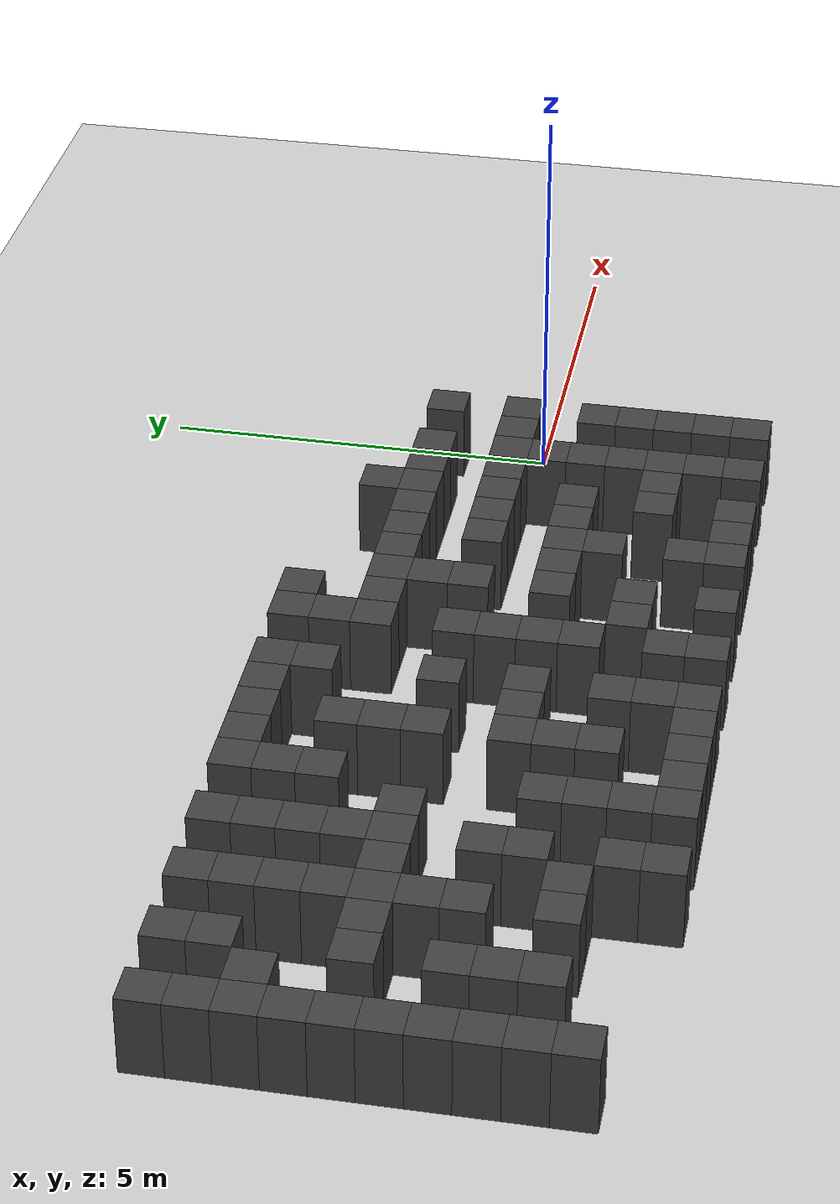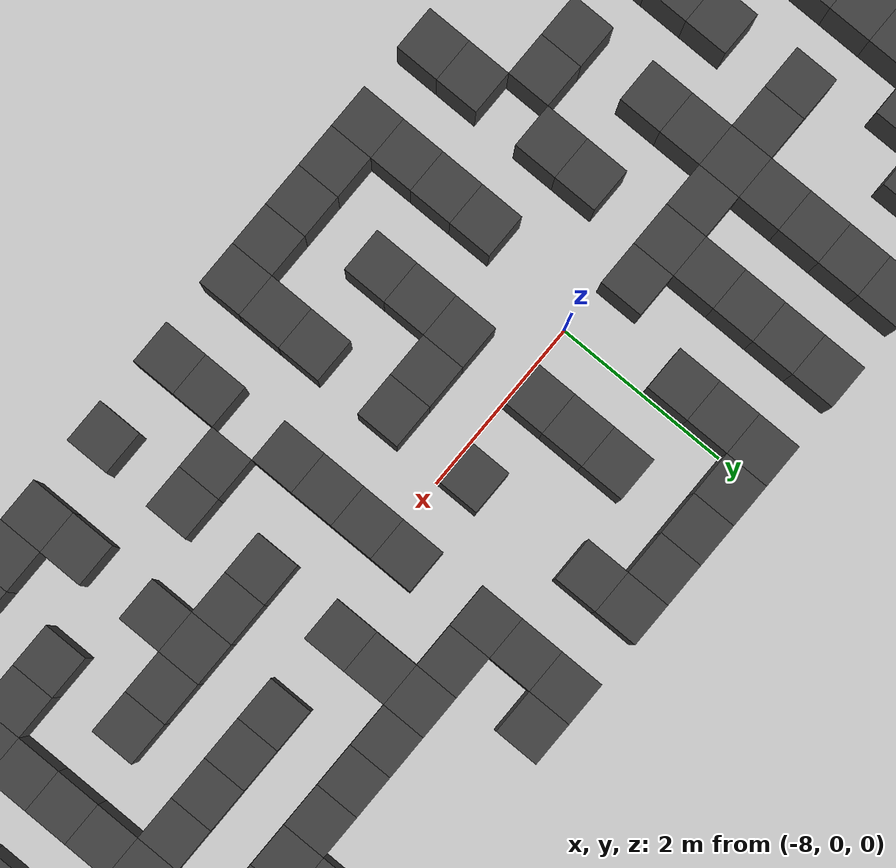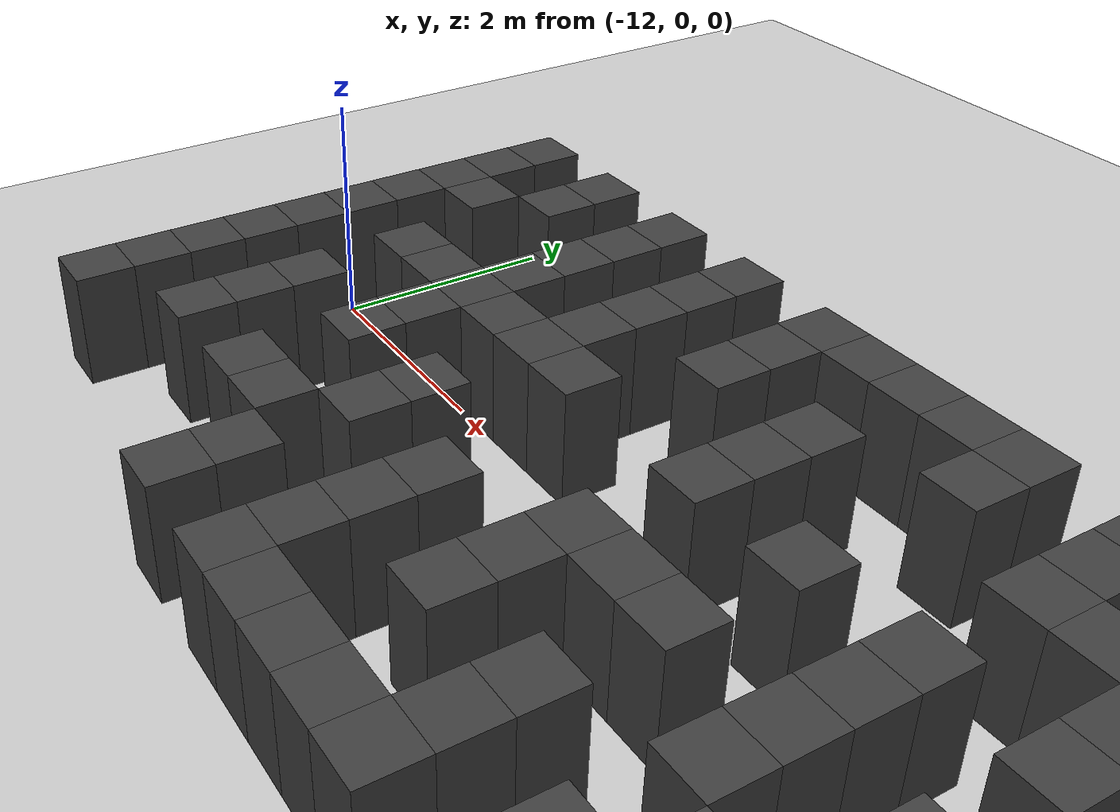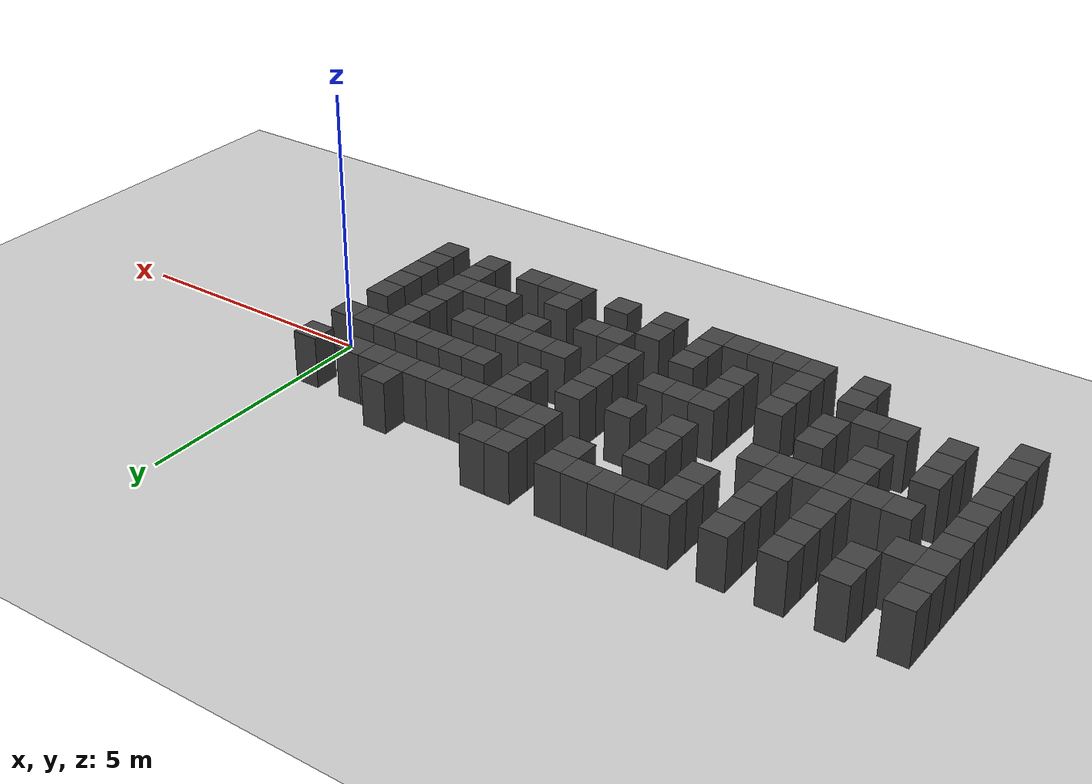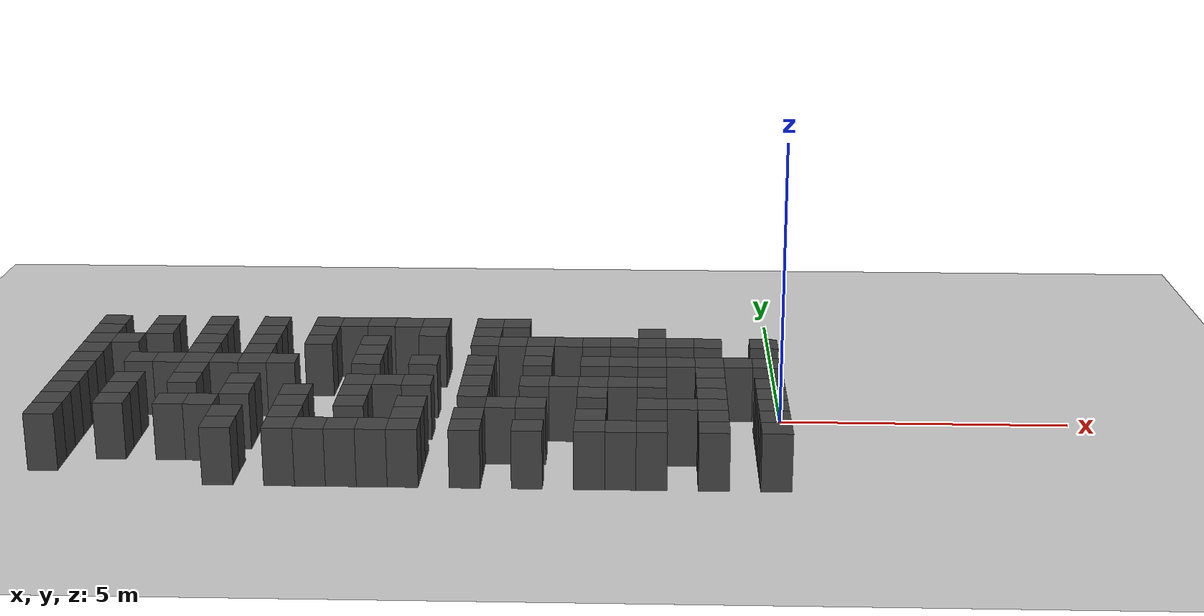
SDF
<sdf version="1.7">
 <world name="map_15168">
  <model name="ground_plane">
   <static>true</static>
   <link name="link">
    <collision name="collision">
     <geometry><plane><normal>0 0 1</normal><size>200 200</size></plane></geometry>
    </collision>
    <visual name="visual">
     <geometry><plane><normal>0 0 1</normal><size>200 200</size></plane></geometry>
     <material><ambient>0.8 0.8 0.8 1</ambient><diffuse>0.8 0.8 0.8 1</diffuse></material>
    </visual>
   </link>
  </model>
  <model name="maze_environment">
   <static>true</static>
   <link name="wall_473">
    <pose>-12.250 2.250 0.500 0 0 0</pose>
    <collision name="col"><geometry><box><size>0.5 0.5 1.0</size></box></geometry></collision>
    <visual name="vis">
     <geometry><box><size>0.5 0.5 1.0</size></box></geometry>
     <material><ambient>0.15 0.15 0.15 1</ambient><diffuse>0.25 0.25 0.25 1</diffuse></material>
    </visual>
   </link>
   <link name="wall_474">
    <pose>-11.250 2.250 0.500 0 0 0</pose>
    <collision name="col"><geometry><box><size>0.5 0.5 1.0</size></box></geometry></collision>
    <visual name="vis">
     <geometry><box><size>0.5 0.5 1.0</size></box></geometry>
     <material><ambient>0.15 0.15 0.15 1</ambient><diffuse>0.25 0.25 0.25 1</diffuse></material>
    </visual>
   </link>
   <link name="wall_475">
    <pose>-10.250 2.250 0.500 0 0 0</pose>
    <collision name="col"><geometry><box><size>0.5 0.5 1.0</size></box></geometry></collision>
    <visual name="vis">
     <geometry><box><size>0.5 0.5 1.0</size></box></geometry>
     <material><ambient>0.15 0.15 0.15 1</ambient><diffuse>0.25 0.25 0.25 1</diffuse></material>
    </visual>
   </link>
   <link name="wall_476">
    <pose>-9.250 2.250 0.500 0 0 0</pose>
    <collision name="col"><geometry><box><size>0.5 0.5 1.0</size></box></geometry></collision>
    <visual name="vis">
     <geometry><box><size>0.5 0.5 1.0</size></box></geometry>
     <material><ambient>0.15 0.15 0.15 1</ambient><diffuse>0.25 0.25 0.25 1</diffuse></material>
    </visual>
   </link>
   <link name="wall_477">
    <pose>-8.250 2.250 0.500 0 0 0</pose>
    <collision name="col"><geometry><box><size>0.5 0.5 1.0</size></box></geometry></collision>
    <visual name="vis">
     <geometry><box><size>0.5 0.5 1.0</size></box></geometry>
     <material><ambient>0.15 0.15 0.15 1</ambient><diffuse>0.25 0.25 0.25 1</diffuse></material>
    </visual>
   </link>
   <link name="wall_478">
    <pose>-7.750 2.250 0.500 0 0 0</pose>
    <collision name="col"><geometry><box><size>0.5 0.5 1.0</size></box></geometry></collision>
    <visual name="vis">
     <geometry><box><size>0.5 0.5 1.0</size></box></geometry>
     <material><ambient>0.15 0.15 0.15 1</ambient><diffuse>0.25 0.25 0.25 1</diffuse></material>
    </visual>
   </link>
   <link name="wall_479">
    <pose>-7.250 2.250 0.500 0 0 0</pose>
    <collision name="col"><geometry><box><size>0.5 0.5 1.0</size></box></geometry></collision>
    <visual name="vis">
     <geometry><box><size>0.5 0.5 1.0</size></box></geometry>
     <material><ambient>0.15 0.15 0.15 1</ambient><diffuse>0.25 0.25 0.25 1</diffuse></material>
    </visual>
   </link>
   <link name="wall_480">
    <pose>-6.750 2.250 0.500 0 0 0</pose>
    <collision name="col"><geometry><box><size>0.5 0.5 1.0</size></box></geometry></collision>
    <visual name="vis">
     <geometry><box><size>0.5 0.5 1.0</size></box></geometry>
     <material><ambient>0.15 0.15 0.15 1</ambient><diffuse>0.25 0.25 0.25 1</diffuse></material>
    </visual>
   </link>
   <link name="wall_481">
    <pose>-6.250 2.250 0.500 0 0 0</pose>
    <collision name="col"><geometry><box><size>0.5 0.5 1.0</size></box></geometry></collision>
    <visual name="vis">
     <geometry><box><size>0.5 0.5 1.0</size></box></geometry>
     <material><ambient>0.15 0.15 0.15 1</ambient><diffuse>0.25 0.25 0.25 1</diffuse></material>
    </visual>
   </link>
   <link name="wall_482">
    <pose>-5.250 2.250 0.500 0 0 0</pose>
    <collision name="col"><geometry><box><size>0.5 0.5 1.0</size></box></geometry></collision>
    <visual name="vis">
     <geometry><box><size>0.5 0.5 1.0</size></box></geometry>
     <material><ambient>0.15 0.15 0.15 1</ambient><diffuse>0.25 0.25 0.25 1</diffuse></material>
    </visual>
   </link>
   <link name="wall_483">
    <pose>-4.750 2.250 0.500 0 0 0</pose>
    <collision name="col"><geometry><box><size>0.5 0.5 1.0</size></box></geometry></collision>
    <visual name="vis">
     <geometry><box><size>0.5 0.5 1.0</size></box></geometry>
     <material><ambient>0.15 0.15 0.15 1</ambient><diffuse>0.25 0.25 0.25 1</diffuse></material>
    </visual>
   </link>
   <link name="wall_506">
    <pose>-12.250 1.750 0.500 0 0 0</pose>
    <collision name="col"><geometry><box><size>0.5 0.5 1.0</size></box></geometry></collision>
    <visual name="vis">
     <geometry><box><size>0.5 0.5 1.0</size></box></geometry>
     <material><ambient>0.15 0.15 0.15 1</ambient><diffuse>0.25 0.25 0.25 1</diffuse></material>
    </visual>
   </link>
   <link name="wall_507">
    <pose>-11.250 1.750 0.500 0 0 0</pose>
    <collision name="col"><geometry><box><size>0.5 0.5 1.0</size></box></geometry></collision>
    <visual name="vis">
     <geometry><box><size>0.5 0.5 1.0</size></box></geometry>
     <material><ambient>0.15 0.15 0.15 1</ambient><diffuse>0.25 0.25 0.25 1</diffuse></material>
    </visual>
   </link>
   <link name="wall_508">
    <pose>-10.250 1.750 0.500 0 0 0</pose>
    <collision name="col"><geometry><box><size>0.5 0.5 1.0</size></box></geometry></collision>
    <visual name="vis">
     <geometry><box><size>0.5 0.5 1.0</size></box></geometry>
     <material><ambient>0.15 0.15 0.15 1</ambient><diffuse>0.25 0.25 0.25 1</diffuse></material>
    </visual>
   </link>
   <link name="wall_509">
    <pose>-9.250 1.750 0.500 0 0 0</pose>
    <collision name="col"><geometry><box><size>0.5 0.5 1.0</size></box></geometry></collision>
    <visual name="vis">
     <geometry><box><size>0.5 0.5 1.0</size></box></geometry>
     <material><ambient>0.15 0.15 0.15 1</ambient><diffuse>0.25 0.25 0.25 1</diffuse></material>
    </visual>
   </link>
   <link name="wall_510">
    <pose>-8.250 1.750 0.500 0 0 0</pose>
    <collision name="col"><geometry><box><size>0.5 0.5 1.0</size></box></geometry></collision>
    <visual name="vis">
     <geometry><box><size>0.5 0.5 1.0</size></box></geometry>
     <material><ambient>0.15 0.15 0.15 1</ambient><diffuse>0.25 0.25 0.25 1</diffuse></material>
    </visual>
   </link>
   <link name="wall_511">
    <pose>-6.250 1.750 0.500 0 0 0</pose>
    <collision name="col"><geometry><box><size>0.5 0.5 1.0</size></box></geometry></collision>
    <visual name="vis">
     <geometry><box><size>0.5 0.5 1.0</size></box></geometry>
     <material><ambient>0.15 0.15 0.15 1</ambient><diffuse>0.25 0.25 0.25 1</diffuse></material>
    </visual>
   </link>
   <link name="wall_512">
    <pose>-5.250 1.750 0.500 0 0 0</pose>
    <collision name="col"><geometry><box><size>0.5 0.5 1.0</size></box></geometry></collision>
    <visual name="vis">
     <geometry><box><size>0.5 0.5 1.0</size></box></geometry>
     <material><ambient>0.15 0.15 0.15 1</ambient><diffuse>0.25 0.25 0.25 1</diffuse></material>
    </visual>
   </link>
   <link name="wall_513">
    <pose>-2.250 1.750 0.500 0 0 0</pose>
    <collision name="col"><geometry><box><size>0.5 0.5 1.0</size></box></geometry></collision>
    <visual name="vis">
     <geometry><box><size>0.5 0.5 1.0</size></box></geometry>
     <material><ambient>0.15 0.15 0.15 1</ambient><diffuse>0.25 0.25 0.25 1</diffuse></material>
    </visual>
   </link>
   <link name="wall_521">
    <pose>-12.250 1.250 0.500 0 0 0</pose>
    <collision name="col"><geometry><box><size>0.5 0.5 1.0</size></box></geometry></collision>
    <visual name="vis">
     <geometry><box><size>0.5 0.5 1.0</size></box></geometry>
     <material><ambient>0.15 0.15 0.15 1</ambient><diffuse>0.25 0.25 0.25 1</diffuse></material>
    </visual>
   </link>
   <link name="wall_522">
    <pose>-11.750 1.250 0.500 0 0 0</pose>
    <collision name="col"><geometry><box><size>0.5 0.5 1.0</size></box></geometry></collision>
    <visual name="vis">
     <geometry><box><size>0.5 0.5 1.0</size></box></geometry>
     <material><ambient>0.15 0.15 0.15 1</ambient><diffuse>0.25 0.25 0.25 1</diffuse></material>
    </visual>
   </link>
   <link name="wall_523">
    <pose>-10.250 1.250 0.500 0 0 0</pose>
    <collision name="col"><geometry><box><size>0.5 0.5 1.0</size></box></geometry></collision>
    <visual name="vis">
     <geometry><box><size>0.5 0.5 1.0</size></box></geometry>
     <material><ambient>0.15 0.15 0.15 1</ambient><diffuse>0.25 0.25 0.25 1</diffuse></material>
    </visual>
   </link>
   <link name="wall_524">
    <pose>-9.250 1.250 0.500 0 0 0</pose>
    <collision name="col"><geometry><box><size>0.5 0.5 1.0</size></box></geometry></collision>
    <visual name="vis">
     <geometry><box><size>0.5 0.5 1.0</size></box></geometry>
     <material><ambient>0.15 0.15 0.15 1</ambient><diffuse>0.25 0.25 0.25 1</diffuse></material>
    </visual>
   </link>
   <link name="wall_525">
    <pose>-8.250 1.250 0.500 0 0 0</pose>
    <collision name="col"><geometry><box><size>0.5 0.5 1.0</size></box></geometry></collision>
    <visual name="vis">
     <geometry><box><size>0.5 0.5 1.0</size></box></geometry>
     <material><ambient>0.15 0.15 0.15 1</ambient><diffuse>0.25 0.25 0.25 1</diffuse></material>
    </visual>
   </link>
   <link name="wall_526">
    <pose>-7.250 1.250 0.500 0 0 0</pose>
    <collision name="col"><geometry><box><size>0.5 0.5 1.0</size></box></geometry></collision>
    <visual name="vis">
     <geometry><box><size>0.5 0.5 1.0</size></box></geometry>
     <material><ambient>0.15 0.15 0.15 1</ambient><diffuse>0.25 0.25 0.25 1</diffuse></material>
    </visual>
   </link>
   <link name="wall_527">
    <pose>-5.250 1.250 0.500 0 0 0</pose>
    <collision name="col"><geometry><box><size>0.5 0.5 1.0</size></box></geometry></collision>
    <visual name="vis">
     <geometry><box><size>0.5 0.5 1.0</size></box></geometry>
     <material><ambient>0.15 0.15 0.15 1</ambient><diffuse>0.25 0.25 0.25 1</diffuse></material>
    </visual>
   </link>
   <link name="wall_528">
    <pose>-4.750 1.250 0.500 0 0 0</pose>
    <collision name="col"><geometry><box><size>0.5 0.5 1.0</size></box></geometry></collision>
    <visual name="vis">
     <geometry><box><size>0.5 0.5 1.0</size></box></geometry>
     <material><ambient>0.15 0.15 0.15 1</ambient><diffuse>0.25 0.25 0.25 1</diffuse></material>
    </visual>
   </link>
   <link name="wall_529">
    <pose>-4.250 1.250 0.500 0 0 0</pose>
    <collision name="col"><geometry><box><size>0.5 0.5 1.0</size></box></geometry></collision>
    <visual name="vis">
     <geometry><box><size>0.5 0.5 1.0</size></box></geometry>
     <material><ambient>0.15 0.15 0.15 1</ambient><diffuse>0.25 0.25 0.25 1</diffuse></material>
    </visual>
   </link>
   <link name="wall_530">
    <pose>-3.750 1.250 0.500 0 0 0</pose>
    <collision name="col"><geometry><box><size>0.5 0.5 1.0</size></box></geometry></collision>
    <visual name="vis">
     <geometry><box><size>0.5 0.5 1.0</size></box></geometry>
     <material><ambient>0.15 0.15 0.15 1</ambient><diffuse>0.25 0.25 0.25 1</diffuse></material>
    </visual>
   </link>
   <link name="wall_531">
    <pose>-3.250 1.250 0.500 0 0 0</pose>
    <collision name="col"><geometry><box><size>0.5 0.5 1.0</size></box></geometry></collision>
    <visual name="vis">
     <geometry><box><size>0.5 0.5 1.0</size></box></geometry>
     <material><ambient>0.15 0.15 0.15 1</ambient><diffuse>0.25 0.25 0.25 1</diffuse></material>
    </visual>
   </link>
   <link name="wall_532">
    <pose>-2.750 1.250 0.500 0 0 0</pose>
    <collision name="col"><geometry><box><size>0.5 0.5 1.0</size></box></geometry></collision>
    <visual name="vis">
     <geometry><box><size>0.5 0.5 1.0</size></box></geometry>
     <material><ambient>0.15 0.15 0.15 1</ambient><diffuse>0.25 0.25 0.25 1</diffuse></material>
    </visual>
   </link>
   <link name="wall_533">
    <pose>-2.250 1.250 0.500 0 0 0</pose>
    <collision name="col"><geometry><box><size>0.5 0.5 1.0</size></box></geometry></collision>
    <visual name="vis">
     <geometry><box><size>0.5 0.5 1.0</size></box></geometry>
     <material><ambient>0.15 0.15 0.15 1</ambient><diffuse>0.25 0.25 0.25 1</diffuse></material>
    </visual>
   </link>
   <link name="wall_534">
    <pose>-1.750 1.250 0.500 0 0 0</pose>
    <collision name="col"><geometry><box><size>0.5 0.5 1.0</size></box></geometry></collision>
    <visual name="vis">
     <geometry><box><size>0.5 0.5 1.0</size></box></geometry>
     <material><ambient>0.15 0.15 0.15 1</ambient><diffuse>0.25 0.25 0.25 1</diffuse></material>
    </visual>
   </link>
   <link name="wall_535">
    <pose>-1.250 1.250 0.500 0 0 0</pose>
    <collision name="col"><geometry><box><size>0.5 0.5 1.0</size></box></geometry></collision>
    <visual name="vis">
     <geometry><box><size>0.5 0.5 1.0</size></box></geometry>
     <material><ambient>0.15 0.15 0.15 1</ambient><diffuse>0.25 0.25 0.25 1</diffuse></material>
    </visual>
   </link>
   <link name="wall_536">
    <pose>-0.250 1.250 0.500 0 0 0</pose>
    <collision name="col"><geometry><box><size>0.5 0.5 1.0</size></box></geometry></collision>
    <visual name="vis">
     <geometry><box><size>0.5 0.5 1.0</size></box></geometry>
     <material><ambient>0.15 0.15 0.15 1</ambient><diffuse>0.25 0.25 0.25 1</diffuse></material>
    </visual>
   </link>
   <link name="wall_552">
    <pose>-12.250 0.750 0.500 0 0 0</pose>
    <collision name="col"><geometry><box><size>0.5 0.5 1.0</size></box></geometry></collision>
    <visual name="vis">
     <geometry><box><size>0.5 0.5 1.0</size></box></geometry>
     <material><ambient>0.15 0.15 0.15 1</ambient><diffuse>0.25 0.25 0.25 1</diffuse></material>
    </visual>
   </link>
   <link name="wall_553">
    <pose>-10.250 0.750 0.500 0 0 0</pose>
    <collision name="col"><geometry><box><size>0.5 0.5 1.0</size></box></geometry></collision>
    <visual name="vis">
     <geometry><box><size>0.5 0.5 1.0</size></box></geometry>
     <material><ambient>0.15 0.15 0.15 1</ambient><diffuse>0.25 0.25 0.25 1</diffuse></material>
    </visual>
   </link>
   <link name="wall_554">
    <pose>-9.250 0.750 0.500 0 0 0</pose>
    <collision name="col"><geometry><box><size>0.5 0.5 1.0</size></box></geometry></collision>
    <visual name="vis">
     <geometry><box><size>0.5 0.5 1.0</size></box></geometry>
     <material><ambient>0.15 0.15 0.15 1</ambient><diffuse>0.25 0.25 0.25 1</diffuse></material>
    </visual>
   </link>
   <link name="wall_555">
    <pose>-7.250 0.750 0.500 0 0 0</pose>
    <collision name="col"><geometry><box><size>0.5 0.5 1.0</size></box></geometry></collision>
    <visual name="vis">
     <geometry><box><size>0.5 0.5 1.0</size></box></geometry>
     <material><ambient>0.15 0.15 0.15 1</ambient><diffuse>0.25 0.25 0.25 1</diffuse></material>
    </visual>
   </link>
   <link name="wall_556">
    <pose>-4.250 0.750 0.500 0 0 0</pose>
    <collision name="col"><geometry><box><size>0.5 0.5 1.0</size></box></geometry></collision>
    <visual name="vis">
     <geometry><box><size>0.5 0.5 1.0</size></box></geometry>
     <material><ambient>0.15 0.15 0.15 1</ambient><diffuse>0.25 0.25 0.25 1</diffuse></material>
    </visual>
   </link>
   <link name="wall_565">
    <pose>-12.250 0.250 0.500 0 0 0</pose>
    <collision name="col"><geometry><box><size>0.5 0.5 1.0</size></box></geometry></collision>
    <visual name="vis">
     <geometry><box><size>0.5 0.5 1.0</size></box></geometry>
     <material><ambient>0.15 0.15 0.15 1</ambient><diffuse>0.25 0.25 0.25 1</diffuse></material>
    </visual>
   </link>
   <link name="wall_566">
    <pose>-11.250 0.250 0.500 0 0 0</pose>
    <collision name="col"><geometry><box><size>0.5 0.5 1.0</size></box></geometry></collision>
    <visual name="vis">
     <geometry><box><size>0.5 0.5 1.0</size></box></geometry>
     <material><ambient>0.15 0.15 0.15 1</ambient><diffuse>0.25 0.25 0.25 1</diffuse></material>
    </visual>
   </link>
   <link name="wall_567">
    <pose>-10.750 0.250 0.500 0 0 0</pose>
    <collision name="col"><geometry><box><size>0.5 0.5 1.0</size></box></geometry></collision>
    <visual name="vis">
     <geometry><box><size>0.5 0.5 1.0</size></box></geometry>
     <material><ambient>0.15 0.15 0.15 1</ambient><diffuse>0.25 0.25 0.25 1</diffuse></material>
    </visual>
   </link>
   <link name="wall_568">
    <pose>-10.250 0.250 0.500 0 0 0</pose>
    <collision name="col"><geometry><box><size>0.5 0.5 1.0</size></box></geometry></collision>
    <visual name="vis">
     <geometry><box><size>0.5 0.5 1.0</size></box></geometry>
     <material><ambient>0.15 0.15 0.15 1</ambient><diffuse>0.25 0.25 0.25 1</diffuse></material>
    </visual>
   </link>
   <link name="wall_569">
    <pose>-9.750 0.250 0.500 0 0 0</pose>
    <collision name="col"><geometry><box><size>0.5 0.5 1.0</size></box></geometry></collision>
    <visual name="vis">
     <geometry><box><size>0.5 0.5 1.0</size></box></geometry>
     <material><ambient>0.15 0.15 0.15 1</ambient><diffuse>0.25 0.25 0.25 1</diffuse></material>
    </visual>
   </link>
   <link name="wall_570">
    <pose>-9.250 0.250 0.500 0 0 0</pose>
    <collision name="col"><geometry><box><size>0.5 0.5 1.0</size></box></geometry></collision>
    <visual name="vis">
     <geometry><box><size>0.5 0.5 1.0</size></box></geometry>
     <material><ambient>0.15 0.15 0.15 1</ambient><diffuse>0.25 0.25 0.25 1</diffuse></material>
    </visual>
   </link>
   <link name="wall_571">
    <pose>-8.750 0.250 0.500 0 0 0</pose>
    <collision name="col"><geometry><box><size>0.5 0.5 1.0</size></box></geometry></collision>
    <visual name="vis">
     <geometry><box><size>0.5 0.5 1.0</size></box></geometry>
     <material><ambient>0.15 0.15 0.15 1</ambient><diffuse>0.25 0.25 0.25 1</diffuse></material>
    </visual>
   </link>
   <link name="wall_572">
    <pose>-7.250 0.250 0.500 0 0 0</pose>
    <collision name="col"><geometry><box><size>0.5 0.5 1.0</size></box></geometry></collision>
    <visual name="vis">
     <geometry><box><size>0.5 0.5 1.0</size></box></geometry>
     <material><ambient>0.15 0.15 0.15 1</ambient><diffuse>0.25 0.25 0.25 1</diffuse></material>
    </visual>
   </link>
   <link name="wall_573">
    <pose>-6.250 0.250 0.500 0 0 0</pose>
    <collision name="col"><geometry><box><size>0.5 0.5 1.0</size></box></geometry></collision>
    <visual name="vis">
     <geometry><box><size>0.5 0.5 1.0</size></box></geometry>
     <material><ambient>0.15 0.15 0.15 1</ambient><diffuse>0.25 0.25 0.25 1</diffuse></material>
    </visual>
   </link>
   <link name="wall_574">
    <pose>-5.250 0.250 0.500 0 0 0</pose>
    <collision name="col"><geometry><box><size>0.5 0.5 1.0</size></box></geometry></collision>
    <visual name="vis">
     <geometry><box><size>0.5 0.5 1.0</size></box></geometry>
     <material><ambient>0.15 0.15 0.15 1</ambient><diffuse>0.25 0.25 0.25 1</diffuse></material>
    </visual>
   </link>
   <link name="wall_575">
    <pose>-4.250 0.250 0.500 0 0 0</pose>
    <collision name="col"><geometry><box><size>0.5 0.5 1.0</size></box></geometry></collision>
    <visual name="vis">
     <geometry><box><size>0.5 0.5 1.0</size></box></geometry>
     <material><ambient>0.15 0.15 0.15 1</ambient><diffuse>0.25 0.25 0.25 1</diffuse></material>
    </visual>
   </link>
   <link name="wall_576">
    <pose>-3.250 0.250 0.500 0 0 0</pose>
    <collision name="col"><geometry><box><size>0.5 0.5 1.0</size></box></geometry></collision>
    <visual name="vis">
     <geometry><box><size>0.5 0.5 1.0</size></box></geometry>
     <material><ambient>0.15 0.15 0.15 1</ambient><diffuse>0.25 0.25 0.25 1</diffuse></material>
    </visual>
   </link>
   <link name="wall_577">
    <pose>-2.750 0.250 0.500 0 0 0</pose>
    <collision name="col"><geometry><box><size>0.5 0.5 1.0</size></box></geometry></collision>
    <visual name="vis">
     <geometry><box><size>0.5 0.5 1.0</size></box></geometry>
     <material><ambient>0.15 0.15 0.15 1</ambient><diffuse>0.25 0.25 0.25 1</diffuse></material>
    </visual>
   </link>
   <link name="wall_578">
    <pose>-2.250 0.250 0.500 0 0 0</pose>
    <collision name="col"><geometry><box><size>0.5 0.5 1.0</size></box></geometry></collision>
    <visual name="vis">
     <geometry><box><size>0.5 0.5 1.0</size></box></geometry>
     <material><ambient>0.15 0.15 0.15 1</ambient><diffuse>0.25 0.25 0.25 1</diffuse></material>
    </visual>
   </link>
   <link name="wall_579">
    <pose>-1.750 0.250 0.500 0 0 0</pose>
    <collision name="col"><geometry><box><size>0.5 0.5 1.0</size></box></geometry></collision>
    <visual name="vis">
     <geometry><box><size>0.5 0.5 1.0</size></box></geometry>
     <material><ambient>0.15 0.15 0.15 1</ambient><diffuse>0.25 0.25 0.25 1</diffuse></material>
    </visual>
   </link>
   <link name="wall_580">
    <pose>-1.250 0.250 0.500 0 0 0</pose>
    <collision name="col"><geometry><box><size>0.5 0.5 1.0</size></box></geometry></collision>
    <visual name="vis">
     <geometry><box><size>0.5 0.5 1.0</size></box></geometry>
     <material><ambient>0.15 0.15 0.15 1</ambient><diffuse>0.25 0.25 0.25 1</diffuse></material>
    </visual>
   </link>
   <link name="wall_581">
    <pose>-0.750 0.250 0.500 0 0 0</pose>
    <collision name="col"><geometry><box><size>0.5 0.5 1.0</size></box></geometry></collision>
    <visual name="vis">
     <geometry><box><size>0.5 0.5 1.0</size></box></geometry>
     <material><ambient>0.15 0.15 0.15 1</ambient><diffuse>0.25 0.25 0.25 1</diffuse></material>
    </visual>
   </link>
   <link name="wall_582">
    <pose>-0.250 0.250 0.500 0 0 0</pose>
    <collision name="col"><geometry><box><size>0.5 0.5 1.0</size></box></geometry></collision>
    <visual name="vis">
     <geometry><box><size>0.5 0.5 1.0</size></box></geometry>
     <material><ambient>0.15 0.15 0.15 1</ambient><diffuse>0.25 0.25 0.25 1</diffuse></material>
    </visual>
   </link>
   <link name="wall_596">
    <pose>-12.250 -0.250 0.500 0 0 0</pose>
    <collision name="col"><geometry><box><size>0.5 0.5 1.0</size></box></geometry></collision>
    <visual name="vis">
     <geometry><box><size>0.5 0.5 1.0</size></box></geometry>
     <material><ambient>0.15 0.15 0.15 1</ambient><diffuse>0.25 0.25 0.25 1</diffuse></material>
    </visual>
   </link>
   <link name="wall_597">
    <pose>-10.250 -0.250 0.500 0 0 0</pose>
    <collision name="col"><geometry><box><size>0.5 0.5 1.0</size></box></geometry></collision>
    <visual name="vis">
     <geometry><box><size>0.5 0.5 1.0</size></box></geometry>
     <material><ambient>0.15 0.15 0.15 1</ambient><diffuse>0.25 0.25 0.25 1</diffuse></material>
    </visual>
   </link>
   <link name="wall_598">
    <pose>-5.250 -0.250 0.500 0 0 0</pose>
    <collision name="col"><geometry><box><size>0.5 0.5 1.0</size></box></geometry></collision>
    <visual name="vis">
     <geometry><box><size>0.5 0.5 1.0</size></box></geometry>
     <material><ambient>0.15 0.15 0.15 1</ambient><diffuse>0.25 0.25 0.25 1</diffuse></material>
    </visual>
   </link>
   <link name="wall_599">
    <pose>-1.250 -0.250 0.500 0 0 0</pose>
    <collision name="col"><geometry><box><size>0.5 0.5 1.0</size></box></geometry></collision>
    <visual name="vis">
     <geometry><box><size>0.5 0.5 1.0</size></box></geometry>
     <material><ambient>0.15 0.15 0.15 1</ambient><diffuse>0.25 0.25 0.25 1</diffuse></material>
    </visual>
   </link>
   <link name="wall_609">
    <pose>-12.250 -0.750 0.500 0 0 0</pose>
    <collision name="col"><geometry><box><size>0.5 0.5 1.0</size></box></geometry></collision>
    <visual name="vis">
     <geometry><box><size>0.5 0.5 1.0</size></box></geometry>
     <material><ambient>0.15 0.15 0.15 1</ambient><diffuse>0.25 0.25 0.25 1</diffuse></material>
    </visual>
   </link>
   <link name="wall_610">
    <pose>-11.250 -0.750 0.500 0 0 0</pose>
    <collision name="col"><geometry><box><size>0.5 0.5 1.0</size></box></geometry></collision>
    <visual name="vis">
     <geometry><box><size>0.5 0.5 1.0</size></box></geometry>
     <material><ambient>0.15 0.15 0.15 1</ambient><diffuse>0.25 0.25 0.25 1</diffuse></material>
    </visual>
   </link>
   <link name="wall_611">
    <pose>-10.250 -0.750 0.500 0 0 0</pose>
    <collision name="col"><geometry><box><size>0.5 0.5 1.0</size></box></geometry></collision>
    <visual name="vis">
     <geometry><box><size>0.5 0.5 1.0</size></box></geometry>
     <material><ambient>0.15 0.15 0.15 1</ambient><diffuse>0.25 0.25 0.25 1</diffuse></material>
    </visual>
   </link>
   <link name="wall_612">
    <pose>-9.250 -0.750 0.500 0 0 0</pose>
    <collision name="col"><geometry><box><size>0.5 0.5 1.0</size></box></geometry></collision>
    <visual name="vis">
     <geometry><box><size>0.5 0.5 1.0</size></box></geometry>
     <material><ambient>0.15 0.15 0.15 1</ambient><diffuse>0.25 0.25 0.25 1</diffuse></material>
    </visual>
   </link>
   <link name="wall_613">
    <pose>-7.250 -0.750 0.500 0 0 0</pose>
    <collision name="col"><geometry><box><size>0.5 0.5 1.0</size></box></geometry></collision>
    <visual name="vis">
     <geometry><box><size>0.5 0.5 1.0</size></box></geometry>
     <material><ambient>0.15 0.15 0.15 1</ambient><diffuse>0.25 0.25 0.25 1</diffuse></material>
    </visual>
   </link>
   <link name="wall_614">
    <pose>-6.750 -0.750 0.500 0 0 0</pose>
    <collision name="col"><geometry><box><size>0.5 0.5 1.0</size></box></geometry></collision>
    <visual name="vis">
     <geometry><box><size>0.5 0.5 1.0</size></box></geometry>
     <material><ambient>0.15 0.15 0.15 1</ambient><diffuse>0.25 0.25 0.25 1</diffuse></material>
    </visual>
   </link>
   <link name="wall_615">
    <pose>-6.250 -0.750 0.500 0 0 0</pose>
    <collision name="col"><geometry><box><size>0.5 0.5 1.0</size></box></geometry></collision>
    <visual name="vis">
     <geometry><box><size>0.5 0.5 1.0</size></box></geometry>
     <material><ambient>0.15 0.15 0.15 1</ambient><diffuse>0.25 0.25 0.25 1</diffuse></material>
    </visual>
   </link>
   <link name="wall_616">
    <pose>-5.250 -0.750 0.500 0 0 0</pose>
    <collision name="col"><geometry><box><size>0.5 0.5 1.0</size></box></geometry></collision>
    <visual name="vis">
     <geometry><box><size>0.5 0.5 1.0</size></box></geometry>
     <material><ambient>0.15 0.15 0.15 1</ambient><diffuse>0.25 0.25 0.25 1</diffuse></material>
    </visual>
   </link>
   <link name="wall_617">
    <pose>-4.250 -0.750 0.500 0 0 0</pose>
    <collision name="col"><geometry><box><size>0.5 0.5 1.0</size></box></geometry></collision>
    <visual name="vis">
     <geometry><box><size>0.5 0.5 1.0</size></box></geometry>
     <material><ambient>0.15 0.15 0.15 1</ambient><diffuse>0.25 0.25 0.25 1</diffuse></material>
    </visual>
   </link>
   <link name="wall_618">
    <pose>-3.750 -0.750 0.500 0 0 0</pose>
    <collision name="col"><geometry><box><size>0.5 0.5 1.0</size></box></geometry></collision>
    <visual name="vis">
     <geometry><box><size>0.5 0.5 1.0</size></box></geometry>
     <material><ambient>0.15 0.15 0.15 1</ambient><diffuse>0.25 0.25 0.25 1</diffuse></material>
    </visual>
   </link>
   <link name="wall_619">
    <pose>-3.250 -0.750 0.500 0 0 0</pose>
    <collision name="col"><geometry><box><size>0.5 0.5 1.0</size></box></geometry></collision>
    <visual name="vis">
     <geometry><box><size>0.5 0.5 1.0</size></box></geometry>
     <material><ambient>0.15 0.15 0.15 1</ambient><diffuse>0.25 0.25 0.25 1</diffuse></material>
    </visual>
   </link>
   <link name="wall_620">
    <pose>-2.750 -0.750 0.500 0 0 0</pose>
    <collision name="col"><geometry><box><size>0.5 0.5 1.0</size></box></geometry></collision>
    <visual name="vis">
     <geometry><box><size>0.5 0.5 1.0</size></box></geometry>
     <material><ambient>0.15 0.15 0.15 1</ambient><diffuse>0.25 0.25 0.25 1</diffuse></material>
    </visual>
   </link>
   <link name="wall_621">
    <pose>-2.250 -0.750 0.500 0 0 0</pose>
    <collision name="col"><geometry><box><size>0.5 0.5 1.0</size></box></geometry></collision>
    <visual name="vis">
     <geometry><box><size>0.5 0.5 1.0</size></box></geometry>
     <material><ambient>0.15 0.15 0.15 1</ambient><diffuse>0.25 0.25 0.25 1</diffuse></material>
    </visual>
   </link>
   <link name="wall_622">
    <pose>-1.250 -0.750 0.500 0 0 0</pose>
    <collision name="col"><geometry><box><size>0.5 0.5 1.0</size></box></geometry></collision>
    <visual name="vis">
     <geometry><box><size>0.5 0.5 1.0</size></box></geometry>
     <material><ambient>0.15 0.15 0.15 1</ambient><diffuse>0.25 0.25 0.25 1</diffuse></material>
    </visual>
   </link>
   <link name="wall_623">
    <pose>-0.250 -0.750 0.500 0 0 0</pose>
    <collision name="col"><geometry><box><size>0.5 0.5 1.0</size></box></geometry></collision>
    <visual name="vis">
     <geometry><box><size>0.5 0.5 1.0</size></box></geometry>
     <material><ambient>0.15 0.15 0.15 1</ambient><diffuse>0.25 0.25 0.25 1</diffuse></material>
    </visual>
   </link>
   <link name="wall_638">
    <pose>-12.250 -1.250 0.500 0 0 0</pose>
    <collision name="col"><geometry><box><size>0.5 0.5 1.0</size></box></geometry></collision>
    <visual name="vis">
     <geometry><box><size>0.5 0.5 1.0</size></box></geometry>
     <material><ambient>0.15 0.15 0.15 1</ambient><diffuse>0.25 0.25 0.25 1</diffuse></material>
    </visual>
   </link>
   <link name="wall_639">
    <pose>-11.250 -1.250 0.500 0 0 0</pose>
    <collision name="col"><geometry><box><size>0.5 0.5 1.0</size></box></geometry></collision>
    <visual name="vis">
     <geometry><box><size>0.5 0.5 1.0</size></box></geometry>
     <material><ambient>0.15 0.15 0.15 1</ambient><diffuse>0.25 0.25 0.25 1</diffuse></material>
    </visual>
   </link>
   <link name="wall_640">
    <pose>-9.250 -1.250 0.500 0 0 0</pose>
    <collision name="col"><geometry><box><size>0.5 0.5 1.0</size></box></geometry></collision>
    <visual name="vis">
     <geometry><box><size>0.5 0.5 1.0</size></box></geometry>
     <material><ambient>0.15 0.15 0.15 1</ambient><diffuse>0.25 0.25 0.25 1</diffuse></material>
    </visual>
   </link>
   <link name="wall_641">
    <pose>-8.250 -1.250 0.500 0 0 0</pose>
    <collision name="col"><geometry><box><size>0.5 0.5 1.0</size></box></geometry></collision>
    <visual name="vis">
     <geometry><box><size>0.5 0.5 1.0</size></box></geometry>
     <material><ambient>0.15 0.15 0.15 1</ambient><diffuse>0.25 0.25 0.25 1</diffuse></material>
    </visual>
   </link>
   <link name="wall_642">
    <pose>-7.250 -1.250 0.500 0 0 0</pose>
    <collision name="col"><geometry><box><size>0.5 0.5 1.0</size></box></geometry></collision>
    <visual name="vis">
     <geometry><box><size>0.5 0.5 1.0</size></box></geometry>
     <material><ambient>0.15 0.15 0.15 1</ambient><diffuse>0.25 0.25 0.25 1</diffuse></material>
    </visual>
   </link>
   <link name="wall_643">
    <pose>-5.250 -1.250 0.500 0 0 0</pose>
    <collision name="col"><geometry><box><size>0.5 0.5 1.0</size></box></geometry></collision>
    <visual name="vis">
     <geometry><box><size>0.5 0.5 1.0</size></box></geometry>
     <material><ambient>0.15 0.15 0.15 1</ambient><diffuse>0.25 0.25 0.25 1</diffuse></material>
    </visual>
   </link>
   <link name="wall_644">
    <pose>-3.250 -1.250 0.500 0 0 0</pose>
    <collision name="col"><geometry><box><size>0.5 0.5 1.0</size></box></geometry></collision>
    <visual name="vis">
     <geometry><box><size>0.5 0.5 1.0</size></box></geometry>
     <material><ambient>0.15 0.15 0.15 1</ambient><diffuse>0.25 0.25 0.25 1</diffuse></material>
    </visual>
   </link>
   <link name="wall_645">
    <pose>-1.250 -1.250 0.500 0 0 0</pose>
    <collision name="col"><geometry><box><size>0.5 0.5 1.0</size></box></geometry></collision>
    <visual name="vis">
     <geometry><box><size>0.5 0.5 1.0</size></box></geometry>
     <material><ambient>0.15 0.15 0.15 1</ambient><diffuse>0.25 0.25 0.25 1</diffuse></material>
    </visual>
   </link>
   <link name="wall_646">
    <pose>-0.250 -1.250 0.500 0 0 0</pose>
    <collision name="col"><geometry><box><size>0.5 0.5 1.0</size></box></geometry></collision>
    <visual name="vis">
     <geometry><box><size>0.5 0.5 1.0</size></box></geometry>
     <material><ambient>0.15 0.15 0.15 1</ambient><diffuse>0.25 0.25 0.25 1</diffuse></material>
    </visual>
   </link>
   <link name="wall_656">
    <pose>-12.250 -1.750 0.500 0 0 0</pose>
    <collision name="col"><geometry><box><size>0.5 0.5 1.0</size></box></geometry></collision>
    <visual name="vis">
     <geometry><box><size>0.5 0.5 1.0</size></box></geometry>
     <material><ambient>0.15 0.15 0.15 1</ambient><diffuse>0.25 0.25 0.25 1</diffuse></material>
    </visual>
   </link>
   <link name="wall_657">
    <pose>-11.250 -1.750 0.500 0 0 0</pose>
    <collision name="col"><geometry><box><size>0.5 0.5 1.0</size></box></geometry></collision>
    <visual name="vis">
     <geometry><box><size>0.5 0.5 1.0</size></box></geometry>
     <material><ambient>0.15 0.15 0.15 1</ambient><diffuse>0.25 0.25 0.25 1</diffuse></material>
    </visual>
   </link>
   <link name="wall_658">
    <pose>-10.250 -1.750 0.500 0 0 0</pose>
    <collision name="col"><geometry><box><size>0.5 0.5 1.0</size></box></geometry></collision>
    <visual name="vis">
     <geometry><box><size>0.5 0.5 1.0</size></box></geometry>
     <material><ambient>0.15 0.15 0.15 1</ambient><diffuse>0.25 0.25 0.25 1</diffuse></material>
    </visual>
   </link>
   <link name="wall_659">
    <pose>-9.750 -1.750 0.500 0 0 0</pose>
    <collision name="col"><geometry><box><size>0.5 0.5 1.0</size></box></geometry></collision>
    <visual name="vis">
     <geometry><box><size>0.5 0.5 1.0</size></box></geometry>
     <material><ambient>0.15 0.15 0.15 1</ambient><diffuse>0.25 0.25 0.25 1</diffuse></material>
    </visual>
   </link>
   <link name="wall_660">
    <pose>-8.250 -1.750 0.500 0 0 0</pose>
    <collision name="col"><geometry><box><size>0.5 0.5 1.0</size></box></geometry></collision>
    <visual name="vis">
     <geometry><box><size>0.5 0.5 1.0</size></box></geometry>
     <material><ambient>0.15 0.15 0.15 1</ambient><diffuse>0.25 0.25 0.25 1</diffuse></material>
    </visual>
   </link>
   <link name="wall_661">
    <pose>-7.250 -1.750 0.500 0 0 0</pose>
    <collision name="col"><geometry><box><size>0.5 0.5 1.0</size></box></geometry></collision>
    <visual name="vis">
     <geometry><box><size>0.5 0.5 1.0</size></box></geometry>
     <material><ambient>0.15 0.15 0.15 1</ambient><diffuse>0.25 0.25 0.25 1</diffuse></material>
    </visual>
   </link>
   <link name="wall_662">
    <pose>-6.250 -1.750 0.500 0 0 0</pose>
    <collision name="col"><geometry><box><size>0.5 0.5 1.0</size></box></geometry></collision>
    <visual name="vis">
     <geometry><box><size>0.5 0.5 1.0</size></box></geometry>
     <material><ambient>0.15 0.15 0.15 1</ambient><diffuse>0.25 0.25 0.25 1</diffuse></material>
    </visual>
   </link>
   <link name="wall_663">
    <pose>-4.750 -1.750 0.500 0 0 0</pose>
    <collision name="col"><geometry><box><size>0.5 0.5 1.0</size></box></geometry></collision>
    <visual name="vis">
     <geometry><box><size>0.5 0.5 1.0</size></box></geometry>
     <material><ambient>0.15 0.15 0.15 1</ambient><diffuse>0.25 0.25 0.25 1</diffuse></material>
    </visual>
   </link>
   <link name="wall_664">
    <pose>-4.250 -1.750 0.500 0 0 0</pose>
    <collision name="col"><geometry><box><size>0.5 0.5 1.0</size></box></geometry></collision>
    <visual name="vis">
     <geometry><box><size>0.5 0.5 1.0</size></box></geometry>
     <material><ambient>0.15 0.15 0.15 1</ambient><diffuse>0.25 0.25 0.25 1</diffuse></material>
    </visual>
   </link>
   <link name="wall_665">
    <pose>-2.250 -1.750 0.500 0 0 0</pose>
    <collision name="col"><geometry><box><size>0.5 0.5 1.0</size></box></geometry></collision>
    <visual name="vis">
     <geometry><box><size>0.5 0.5 1.0</size></box></geometry>
     <material><ambient>0.15 0.15 0.15 1</ambient><diffuse>0.25 0.25 0.25 1</diffuse></material>
    </visual>
   </link>
   <link name="wall_666">
    <pose>-1.750 -1.750 0.500 0 0 0</pose>
    <collision name="col"><geometry><box><size>0.5 0.5 1.0</size></box></geometry></collision>
    <visual name="vis">
     <geometry><box><size>0.5 0.5 1.0</size></box></geometry>
     <material><ambient>0.15 0.15 0.15 1</ambient><diffuse>0.25 0.25 0.25 1</diffuse></material>
    </visual>
   </link>
   <link name="wall_667">
    <pose>-1.250 -1.750 0.500 0 0 0</pose>
    <collision name="col"><geometry><box><size>0.5 0.5 1.0</size></box></geometry></collision>
    <visual name="vis">
     <geometry><box><size>0.5 0.5 1.0</size></box></geometry>
     <material><ambient>0.15 0.15 0.15 1</ambient><diffuse>0.25 0.25 0.25 1</diffuse></material>
    </visual>
   </link>
   <link name="wall_668">
    <pose>-0.250 -1.750 0.500 0 0 0</pose>
    <collision name="col"><geometry><box><size>0.5 0.5 1.0</size></box></geometry></collision>
    <visual name="vis">
     <geometry><box><size>0.5 0.5 1.0</size></box></geometry>
     <material><ambient>0.15 0.15 0.15 1</ambient><diffuse>0.25 0.25 0.25 1</diffuse></material>
    </visual>
   </link>
   <link name="wall_685">
    <pose>-12.250 -2.250 0.500 0 0 0</pose>
    <collision name="col"><geometry><box><size>0.5 0.5 1.0</size></box></geometry></collision>
    <visual name="vis">
     <geometry><box><size>0.5 0.5 1.0</size></box></geometry>
     <material><ambient>0.15 0.15 0.15 1</ambient><diffuse>0.25 0.25 0.25 1</diffuse></material>
    </visual>
   </link>
   <link name="wall_686">
    <pose>-9.250 -2.250 0.500 0 0 0</pose>
    <collision name="col"><geometry><box><size>0.5 0.5 1.0</size></box></geometry></collision>
    <visual name="vis">
     <geometry><box><size>0.5 0.5 1.0</size></box></geometry>
     <material><ambient>0.15 0.15 0.15 1</ambient><diffuse>0.25 0.25 0.25 1</diffuse></material>
    </visual>
   </link>
   <link name="wall_687">
    <pose>-8.250 -2.250 0.500 0 0 0</pose>
    <collision name="col"><geometry><box><size>0.5 0.5 1.0</size></box></geometry></collision>
    <visual name="vis">
     <geometry><box><size>0.5 0.5 1.0</size></box></geometry>
     <material><ambient>0.15 0.15 0.15 1</ambient><diffuse>0.25 0.25 0.25 1</diffuse></material>
    </visual>
   </link>
   <link name="wall_688">
    <pose>-6.250 -2.250 0.500 0 0 0</pose>
    <collision name="col"><geometry><box><size>0.5 0.5 1.0</size></box></geometry></collision>
    <visual name="vis">
     <geometry><box><size>0.5 0.5 1.0</size></box></geometry>
     <material><ambient>0.15 0.15 0.15 1</ambient><diffuse>0.25 0.25 0.25 1</diffuse></material>
    </visual>
   </link>
   <link name="wall_689">
    <pose>-5.250 -2.250 0.500 0 0 0</pose>
    <collision name="col"><geometry><box><size>0.5 0.5 1.0</size></box></geometry></collision>
    <visual name="vis">
     <geometry><box><size>0.5 0.5 1.0</size></box></geometry>
     <material><ambient>0.15 0.15 0.15 1</ambient><diffuse>0.25 0.25 0.25 1</diffuse></material>
    </visual>
   </link>
   <link name="wall_690">
    <pose>-3.250 -2.250 0.500 0 0 0</pose>
    <collision name="col"><geometry><box><size>0.5 0.5 1.0</size></box></geometry></collision>
    <visual name="vis">
     <geometry><box><size>0.5 0.5 1.0</size></box></geometry>
     <material><ambient>0.15 0.15 0.15 1</ambient><diffuse>0.25 0.25 0.25 1</diffuse></material>
    </visual>
   </link>
   <link name="wall_691">
    <pose>-1.250 -2.250 0.500 0 0 0</pose>
    <collision name="col"><geometry><box><size>0.5 0.5 1.0</size></box></geometry></collision>
    <visual name="vis">
     <geometry><box><size>0.5 0.5 1.0</size></box></geometry>
     <material><ambient>0.15 0.15 0.15 1</ambient><diffuse>0.25 0.25 0.25 1</diffuse></material>
    </visual>
   </link>
   <link name="wall_692">
    <pose>-0.250 -2.250 0.500 0 0 0</pose>
    <collision name="col"><geometry><box><size>0.5 0.5 1.0</size></box></geometry></collision>
    <visual name="vis">
     <geometry><box><size>0.5 0.5 1.0</size></box></geometry>
     <material><ambient>0.15 0.15 0.15 1</ambient><diffuse>0.25 0.25 0.25 1</diffuse></material>
    </visual>
   </link>
   <link name="wall_706">
    <pose>-9.250 -2.750 0.500 0 0 0</pose>
    <collision name="col"><geometry><box><size>0.5 0.5 1.0</size></box></geometry></collision>
    <visual name="vis">
     <geometry><box><size>0.5 0.5 1.0</size></box></geometry>
     <material><ambient>0.15 0.15 0.15 1</ambient><diffuse>0.25 0.25 0.25 1</diffuse></material>
    </visual>
   </link>
   <link name="wall_707">
    <pose>-8.250 -2.750 0.500 0 0 0</pose>
    <collision name="col"><geometry><box><size>0.5 0.5 1.0</size></box></geometry></collision>
    <visual name="vis">
     <geometry><box><size>0.5 0.5 1.0</size></box></geometry>
     <material><ambient>0.15 0.15 0.15 1</ambient><diffuse>0.25 0.25 0.25 1</diffuse></material>
    </visual>
   </link>
   <link name="wall_708">
    <pose>-7.750 -2.750 0.500 0 0 0</pose>
    <collision name="col"><geometry><box><size>0.5 0.5 1.0</size></box></geometry></collision>
    <visual name="vis">
     <geometry><box><size>0.5 0.5 1.0</size></box></geometry>
     <material><ambient>0.15 0.15 0.15 1</ambient><diffuse>0.25 0.25 0.25 1</diffuse></material>
    </visual>
   </link>
   <link name="wall_709">
    <pose>-7.250 -2.750 0.500 0 0 0</pose>
    <collision name="col"><geometry><box><size>0.5 0.5 1.0</size></box></geometry></collision>
    <visual name="vis">
     <geometry><box><size>0.5 0.5 1.0</size></box></geometry>
     <material><ambient>0.15 0.15 0.15 1</ambient><diffuse>0.25 0.25 0.25 1</diffuse></material>
    </visual>
   </link>
   <link name="wall_710">
    <pose>-6.750 -2.750 0.500 0 0 0</pose>
    <collision name="col"><geometry><box><size>0.5 0.5 1.0</size></box></geometry></collision>
    <visual name="vis">
     <geometry><box><size>0.5 0.5 1.0</size></box></geometry>
     <material><ambient>0.15 0.15 0.15 1</ambient><diffuse>0.25 0.25 0.25 1</diffuse></material>
    </visual>
   </link>
   <link name="wall_711">
    <pose>-6.250 -2.750 0.500 0 0 0</pose>
    <collision name="col"><geometry><box><size>0.5 0.5 1.0</size></box></geometry></collision>
    <visual name="vis">
     <geometry><box><size>0.5 0.5 1.0</size></box></geometry>
     <material><ambient>0.15 0.15 0.15 1</ambient><diffuse>0.25 0.25 0.25 1</diffuse></material>
    </visual>
   </link>
   <link name="wall_712">
    <pose>-5.250 -2.750 0.500 0 0 0</pose>
    <collision name="col"><geometry><box><size>0.5 0.5 1.0</size></box></geometry></collision>
    <visual name="vis">
     <geometry><box><size>0.5 0.5 1.0</size></box></geometry>
     <material><ambient>0.15 0.15 0.15 1</ambient><diffuse>0.25 0.25 0.25 1</diffuse></material>
    </visual>
   </link>
   <link name="wall_713">
    <pose>-4.250 -2.750 0.500 0 0 0</pose>
    <collision name="col"><geometry><box><size>0.5 0.5 1.0</size></box></geometry></collision>
    <visual name="vis">
     <geometry><box><size>0.5 0.5 1.0</size></box></geometry>
     <material><ambient>0.15 0.15 0.15 1</ambient><diffuse>0.25 0.25 0.25 1</diffuse></material>
    </visual>
   </link>
   <link name="wall_714">
    <pose>-3.250 -2.750 0.500 0 0 0</pose>
    <collision name="col"><geometry><box><size>0.5 0.5 1.0</size></box></geometry></collision>
    <visual name="vis">
     <geometry><box><size>0.5 0.5 1.0</size></box></geometry>
     <material><ambient>0.15 0.15 0.15 1</ambient><diffuse>0.25 0.25 0.25 1</diffuse></material>
    </visual>
   </link>
   <link name="wall_715">
    <pose>-2.750 -2.750 0.500 0 0 0</pose>
    <collision name="col"><geometry><box><size>0.5 0.5 1.0</size></box></geometry></collision>
    <visual name="vis">
     <geometry><box><size>0.5 0.5 1.0</size></box></geometry>
     <material><ambient>0.15 0.15 0.15 1</ambient><diffuse>0.25 0.25 0.25 1</diffuse></material>
    </visual>
   </link>
   <link name="wall_716">
    <pose>-2.250 -2.750 0.500 0 0 0</pose>
    <collision name="col"><geometry><box><size>0.5 0.5 1.0</size></box></geometry></collision>
    <visual name="vis">
     <geometry><box><size>0.5 0.5 1.0</size></box></geometry>
     <material><ambient>0.15 0.15 0.15 1</ambient><diffuse>0.25 0.25 0.25 1</diffuse></material>
    </visual>
   </link>
   <link name="wall_717">
    <pose>-1.250 -2.750 0.500 0 0 0</pose>
    <collision name="col"><geometry><box><size>0.5 0.5 1.0</size></box></geometry></collision>
    <visual name="vis">
     <geometry><box><size>0.5 0.5 1.0</size></box></geometry>
     <material><ambient>0.15 0.15 0.15 1</ambient><diffuse>0.25 0.25 0.25 1</diffuse></material>
    </visual>
   </link>
   <link name="wall_718">
    <pose>-0.250 -2.750 0.500 0 0 0</pose>
    <collision name="col"><geometry><box><size>0.5 0.5 1.0</size></box></geometry></collision>
    <visual name="vis">
     <geometry><box><size>0.5 0.5 1.0</size></box></geometry>
     <material><ambient>0.15 0.15 0.15 1</ambient><diffuse>0.25 0.25 0.25 1</diffuse></material>
    </visual>
   </link>
  </model>
 </world>
</sdf>
